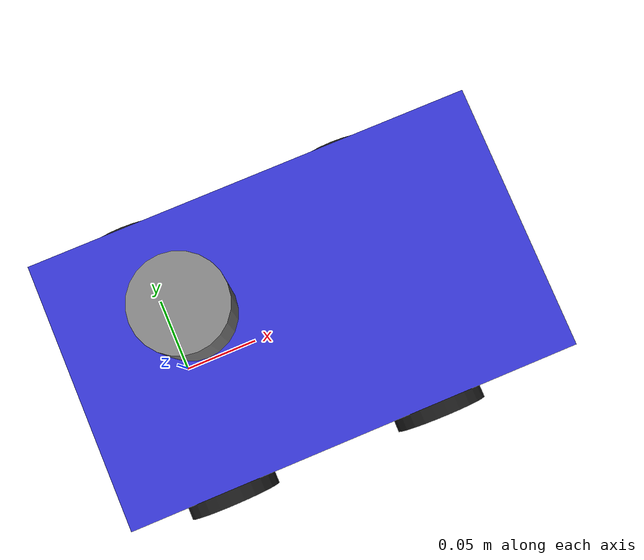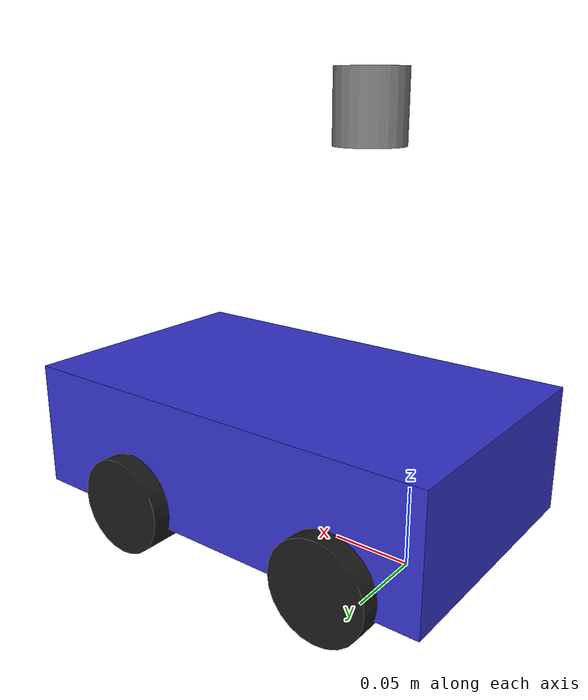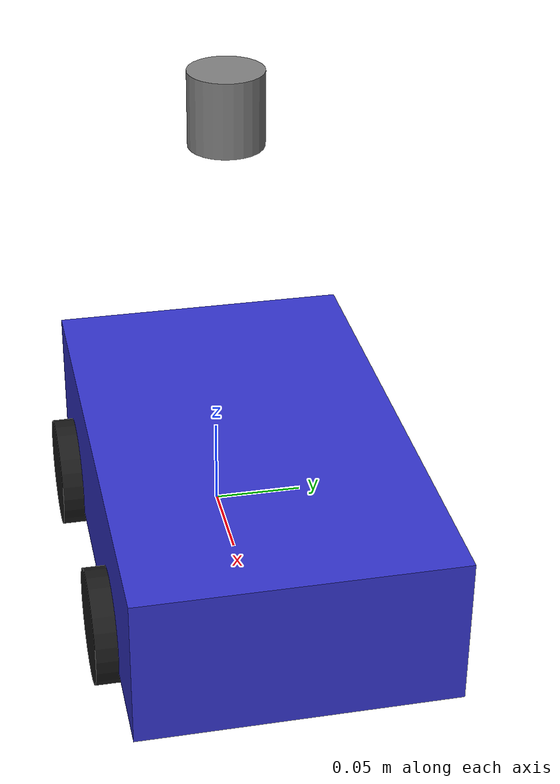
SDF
<?xml version="1.0" ?>
<sdf version="1.8">
<model name="origincar">
  <!-- OriginCar Ackermann robot for Gazebo Fortress
       Dimensions: wheelbase=0.144m, track=0.162m, wheel_r=0.03m
       Rear-axle origin (base_footprint) -->

  <!-- ===== BASE FOOTPRINT (rear axle, origin) ===== -->
  <link name="base_footprint">
    <inertial>
      <mass>0.001</mass>
      <inertia><ixx>0.000001</ixx><iyy>0.000001</iyy><izz>0.000001</izz></inertia>
    </inertial>
  </link>

  <!-- ===== BASE LINK (chassis center, 0.0841m forward of rear axle) ===== -->
  <link name="base_link">
    <pose>0.0841 0 0.03 0 0 0</pose>
    <inertial>
      <mass>2.5</mass>
      <inertia>
        <ixx>0.05</ixx><iyy>0.08</iyy><izz>0.08</izz>
      </inertia>
    </inertial>
    <visual name="body_visual">
      <!-- Keep the calibrated base_link frame at wheel-centre height and
           lift only the chassis geometry to retain ground clearance. -->
      <pose>0 0 0.03 0 0 0</pose>
      <geometry><box><size>0.276 0.164 0.08</size></box></geometry>
      <material>
        <ambient>0.2 0.2 0.8 1</ambient>
        <diffuse>0.2 0.2 0.8 1</diffuse>
      </material>
    </visual>
    <collision name="body_collision">
      <pose>0 0 0.03 0 0 0</pose>
      <geometry><box><size>0.276 0.164 0.06</size></box></geometry>
    </collision>

    <sensor name="imu_sensor" type="imu">
      <topic>/imu</topic>
      <update_rate>20</update_rate>  <!-- sim: EKF bypassed, IMU unused, 100→20 saves CPU -->
      <imu>
        <angular_velocity>
          <x><noise type="gaussian"><mean>0</mean><stddev>0.0003</stddev></noise></x>
          <y><noise type="gaussian"><mean>0</mean><stddev>0.0003</stddev></noise></y>
          <z><noise type="gaussian"><mean>0</mean><stddev>0.0003</stddev></noise></z>
        </angular_velocity>
        <linear_acceleration>
          <x><noise type="gaussian"><mean>0</mean><stddev>0.01</stddev></noise></x>
          <y><noise type="gaussian"><mean>0</mean><stddev>0.01</stddev></noise></y>
          <z><noise type="gaussian"><mean>0</mean><stddev>0.01</stddev></noise></z>
        </linear_acceleration>
      </imu>
    </sensor>
  </link>

  <!-- ===== LASER LINK ===== -->
  <link name="laser_link">
    <!-- Preserve base_link -> laser_link = (-0.05, 0, 0.23). -->
    <pose>0.0341 0 0.26 0 0 0</pose>
    <inertial>
      <mass>0.001</mass>
      <inertia><ixx>0.00001</ixx><iyy>0.00001</iyy><izz>0.00001</izz></inertia>
    </inertial>
    <visual name="laser_visual">
      <geometry><cylinder><radius>0.02</radius><length>0.04</length></cylinder></geometry>
      <material><ambient>0.5 0.5 0.5 1</ambient></material>
    </visual>
    <sensor name="lidar_sensor" type="gpu_lidar">
      <topic>/scan</topic>
      <update_rate>20</update_rate>
      <lidar>
        <scan>
          <horizontal>
            <samples>360</samples>
            <resolution>1</resolution>
            <min_angle>-3.14159</min_angle>
            <max_angle>3.14159</max_angle>
          </horizontal>
        </scan>
        <range><min>0.1</min><max>12.0</max><resolution>0.01</resolution></range>
      </lidar>
      <always_on>true</always_on>
      <visualize>0</visualize>
    </sensor>
  </link>

  <!-- ===== STEERING KNUCKLES (invisible) ===== -->
  <link name="up_left_steer_link">
    <pose>0.144 0.081 0.03 0 0 0</pose>
    <inertial>
      <mass>0.001</mass>
      <inertia><ixx>0.00001</ixx><iyy>0.00001</iyy><izz>0.00001</izz></inertia>
    </inertial>
  </link>

  <link name="up_right_steer_link">
    <pose>0.144 -0.081 0.03 0 0 0</pose>
    <inertial>
      <mass>0.001</mass>
      <inertia><ixx>0.00001</ixx><iyy>0.00001</iyy><izz>0.00001</izz></inertia>
    </inertial>
  </link>

  <!-- ===== WHEELS ===== -->
  <!-- Rear-left -->
  <link name="down_left_Link">
    <pose>0 0.081 0.03 0 0 0</pose>
    <inertial>
      <mass>0.05</mass>
      <inertia><ixx>0.0001</ixx><iyy>0.00005</iyy><izz>0.0001</izz></inertia>
    </inertial>
    <visual name="down_left_visual">
      <!-- SDF cylinders are Z-axis by default; a wheel rolling about the
           Y-axis must be rotated into that joint frame. -->
      <pose>0 0 0 1.5707963267948966 0 0</pose>
      <geometry><cylinder><radius>0.03</radius><length>0.025</length></cylinder></geometry>
      <material><ambient>0.1 0.1 0.1 1</ambient></material>
    </visual>
    <collision name="down_left_collision">
      <pose>0 0 0 1.5707963267948966 0 0</pose>
      <geometry><cylinder><radius>0.03</radius><length>0.025</length></cylinder></geometry>
      <surface><friction><ode><mu>1.0</mu><mu2>1.0</mu2></ode></friction></surface>
    </collision>
  </link>

  <!-- Rear-right -->
  <link name="down_right_Link">
    <pose>0 -0.081 0.03 0 0 0</pose>
    <inertial>
      <mass>0.05</mass>
      <inertia><ixx>0.0001</ixx><iyy>0.00005</iyy><izz>0.0001</izz></inertia>
    </inertial>
    <visual name="down_right_visual">
      <pose>0 0 0 1.5707963267948966 0 0</pose>
      <geometry><cylinder><radius>0.03</radius><length>0.025</length></cylinder></geometry>
      <material><ambient>0.1 0.1 0.1 1</ambient></material>
    </visual>
    <collision name="down_right_collision">
      <pose>0 0 0 1.5707963267948966 0 0</pose>
      <geometry><cylinder><radius>0.03</radius><length>0.025</length></cylinder></geometry>
      <surface><friction><ode><mu>1.0</mu><mu2>1.0</mu2></ode></friction></surface>
    </collision>
  </link>

  <!-- Front-left wheel -->
  <link name="up_left_Link">
    <pose>0.144 0.081 0.03 0 0 0</pose>
    <inertial>
      <mass>0.05</mass>
      <inertia><ixx>0.0001</ixx><iyy>0.00005</iyy><izz>0.0001</izz></inertia>
    </inertial>
    <visual name="up_left_visual">
      <pose>0 0 0 1.5707963267948966 0 0</pose>
      <geometry><cylinder><radius>0.03</radius><length>0.025</length></cylinder></geometry>
      <material><ambient>0.1 0.1 0.1 1</ambient></material>
    </visual>
    <collision name="up_left_collision">
      <pose>0 0 0 1.5707963267948966 0 0</pose>
      <geometry><cylinder><radius>0.03</radius><length>0.025</length></cylinder></geometry>
      <surface><friction><ode><mu>1.0</mu><mu2>1.0</mu2></ode></friction></surface>
    </collision>
  </link>

  <!-- Front-right wheel -->
  <link name="up_right_Link">
    <pose>0.144 -0.081 0.03 0 0 0</pose>
    <inertial>
      <mass>0.05</mass>
      <inertia><ixx>0.0001</ixx><iyy>0.00005</iyy><izz>0.0001</izz></inertia>
    </inertial>
    <visual name="up_right_visual">
      <pose>0 0 0 1.5707963267948966 0 0</pose>
      <geometry><cylinder><radius>0.03</radius><length>0.025</length></cylinder></geometry>
      <material><ambient>0.1 0.1 0.1 1</ambient></material>
    </visual>
    <collision name="up_right_collision">
      <pose>0 0 0 1.5707963267948966 0 0</pose>
      <geometry><cylinder><radius>0.03</radius><length>0.025</length></cylinder></geometry>
      <surface><friction><ode><mu>1.0</mu><mu2>1.0</mu2></ode></friction></surface>
    </collision>
  </link>

  <!-- ===== JOINTS ===== -->
  <!-- base_footprint → base_link (fixed, offset handled by pose) -->
  <joint name="base_footprint_joint" type="fixed">
    <parent>base_footprint</parent>
    <child>base_link</child>
  </joint>

  <!-- base_link → laser_link (fixed) -->
  <joint name="laser_joint" type="fixed">
    <parent>base_link</parent>
    <child>laser_link</child>
  </joint>

  <!-- REAR: base_link → wheel (rotation only) -->
  <joint name="down_left_joint" type="revolute">
    <parent>base_link</parent>
    <child>down_left_Link</child>
    <axis><xyz>0 1 0</xyz><limit><lower>-1e16</lower><upper>1e16</upper></limit></axis>
  </joint>

  <joint name="down_right_joint" type="revolute">
    <parent>base_link</parent>
    <child>down_right_Link</child>
    <axis><xyz>0 1 0</xyz><limit><lower>-1e16</lower><upper>1e16</upper></limit></axis>
  </joint>

  <!-- FRONT STEERING: base_link → steer_link (revolute around Z) -->
  <joint name="up_left_steer_joint" type="revolute">
    <parent>base_link</parent>
    <child>up_left_steer_link</child>
    <axis><xyz>0 0 1</xyz>
      <!-- DART requires an effort limit for a position-limited velocity
           controller. Without it Fortress may stop Ackermann odometry after
           the initial sample. -->
      <limit><lower>-1.0</lower><upper>1.0</upper><effort>1000000</effort></limit></axis>
  </joint>

  <joint name="up_right_steer_joint" type="revolute">
    <parent>base_link</parent>
    <child>up_right_steer_link</child>
    <axis><xyz>0 0 1</xyz>
      <limit><lower>-1.0</lower><upper>1.0</upper><effort>1000000</effort></limit></axis>
  </joint>

  <!-- FRONT WHEEL ROTATION: steer_link → wheel_link (revolute around Y) -->
  <joint name="up_left_joint" type="revolute">
    <parent>up_left_steer_link</parent>
    <child>up_left_Link</child>
    <axis><xyz>0 1 0</xyz><limit><lower>-1e16</lower><upper>1e16</upper></limit></axis>
  </joint>

  <joint name="up_right_joint" type="revolute">
    <parent>up_right_steer_link</parent>
    <child>up_right_Link</child>
    <axis><xyz>0 1 0</xyz><limit><lower>-1e16</lower><upper>1e16</upper></limit></axis>
  </joint>

  <!-- ===== PLUGINS ===== -->
  <plugin filename="ignition-gazebo-ackermann-steering-system"
          name="ignition::gazebo::systems::AckermannSteering">
    <left_joint>up_left_joint</left_joint>
    <left_joint>down_left_joint</left_joint>
    <right_joint>up_right_joint</right_joint>
    <right_joint>down_right_joint</right_joint>
    <left_steering_joint>up_left_steer_joint</left_steering_joint>
    <right_steering_joint>up_right_steer_joint</right_steering_joint>
    <kingpin_width>0.162</kingpin_width>
    <steering_limit>0.714</steering_limit>
    <wheel_base>0.144</wheel_base>
    <wheel_separation>0.162</wheel_separation>
    <wheel_radius>0.03</wheel_radius>
    <min_acceleration>-100.0</min_acceleration>
    <max_acceleration>100.0</max_acceleration>
    <odom_publish_frequency>30</odom_publish_frequency>  <!-- sim: match real EKF rate, 50→30 saves ~3% CPU -->
    <topic>/cmd_vel</topic>
    <odom_topic>/odom</odom_topic>
  </plugin>

  <plugin filename="ignition-gazebo-joint-state-publisher-system"
          name="ignition::gazebo::systems::JointStatePublisher">
    <joint_name>down_left_joint</joint_name>
    <joint_name>down_right_joint</joint_name>
    <joint_name>up_left_steer_joint</joint_name>
    <joint_name>up_right_steer_joint</joint_name>
    <joint_name>up_left_joint</joint_name>
    <joint_name>up_right_joint</joint_name>
    <update_rate>20</update_rate>  <!-- sim: not consumed by nav, 50→20 -->
  </plugin>

  <plugin filename="ignition-gazebo-pose-publisher-system"
          name="ignition::gazebo::systems::PosePublisher">
    <publish_link_pose>false</publish_link_pose>
    <!-- Fortress requires nested-model publication to include this top-level
         model pose; keep both flags explicit rather than relying on defaults. -->
    <publish_nested_model_pose>true</publish_nested_model_pose>
    <publish_model_pose>true</publish_model_pose>
    <publish_visual_pose>false</publish_visual_pose>
    <publish_collision_pose>false</publish_collision_pose>
    <publish_sensor_pose>false</publish_sensor_pose>
    <use_pose_vector_msg>true</use_pose_vector_msg>
    <update_frequency>30</update_frequency>
  </plugin>

  <plugin filename="ignition-gazebo-user-commands-system"
          name="ignition::gazebo::systems::UserCommands"/>

  <plugin filename="ignition-gazebo-scene-broadcaster-system"
          name="ignition::gazebo::systems::SceneBroadcaster"/>
</model>
</sdf>
